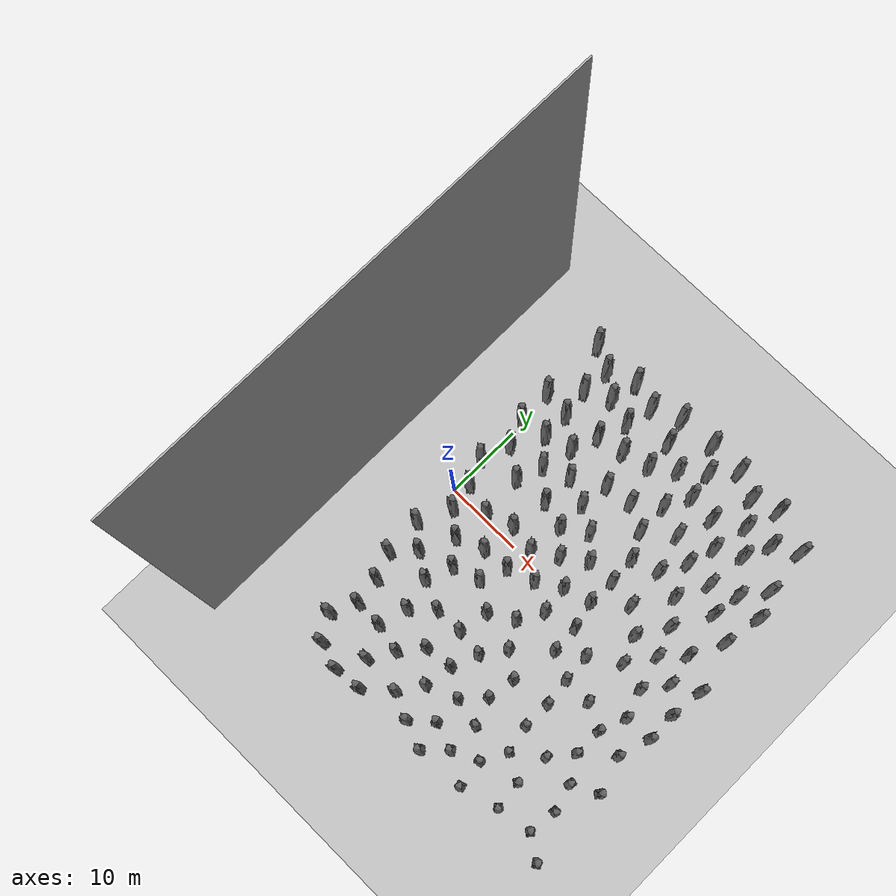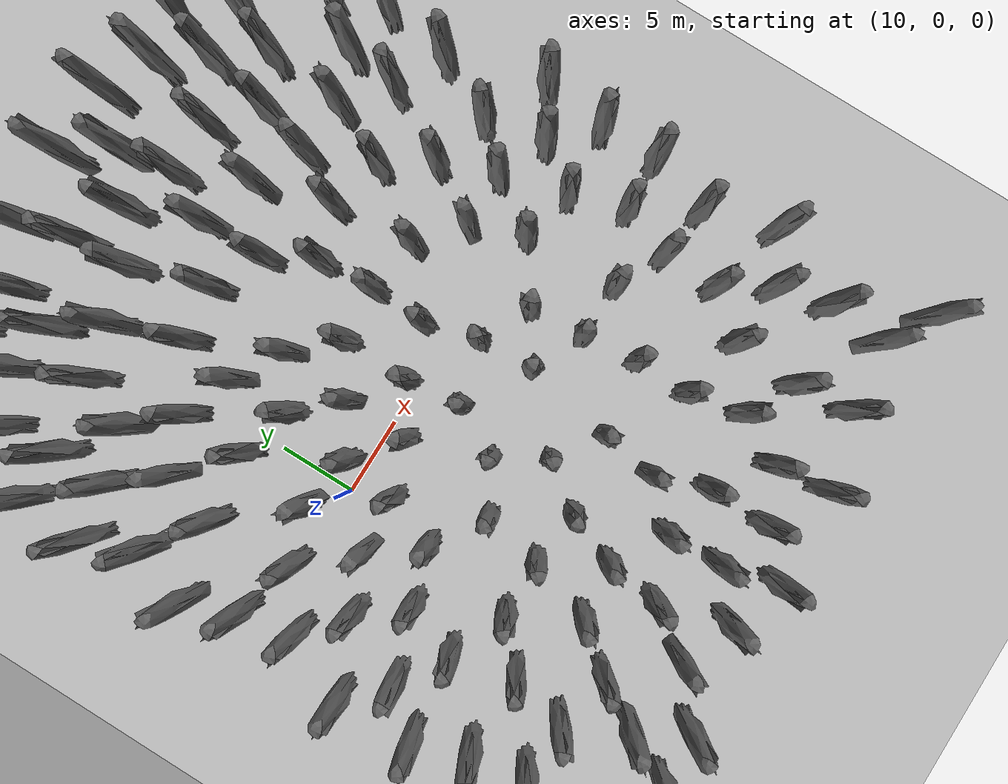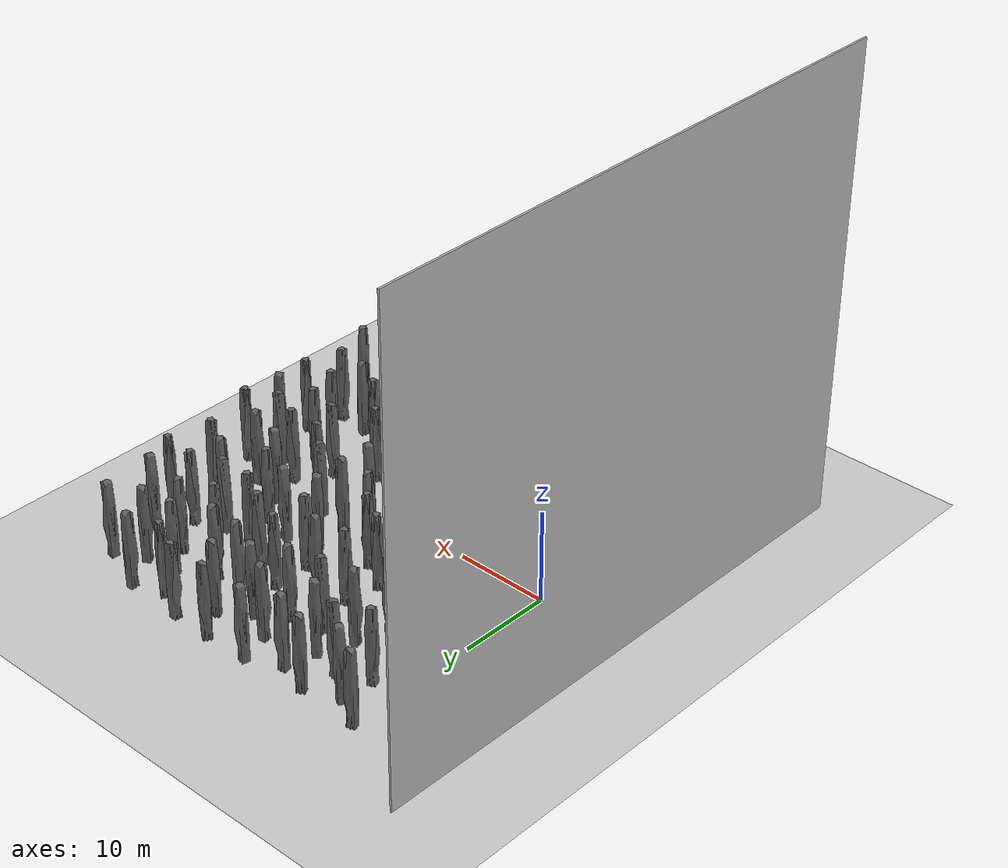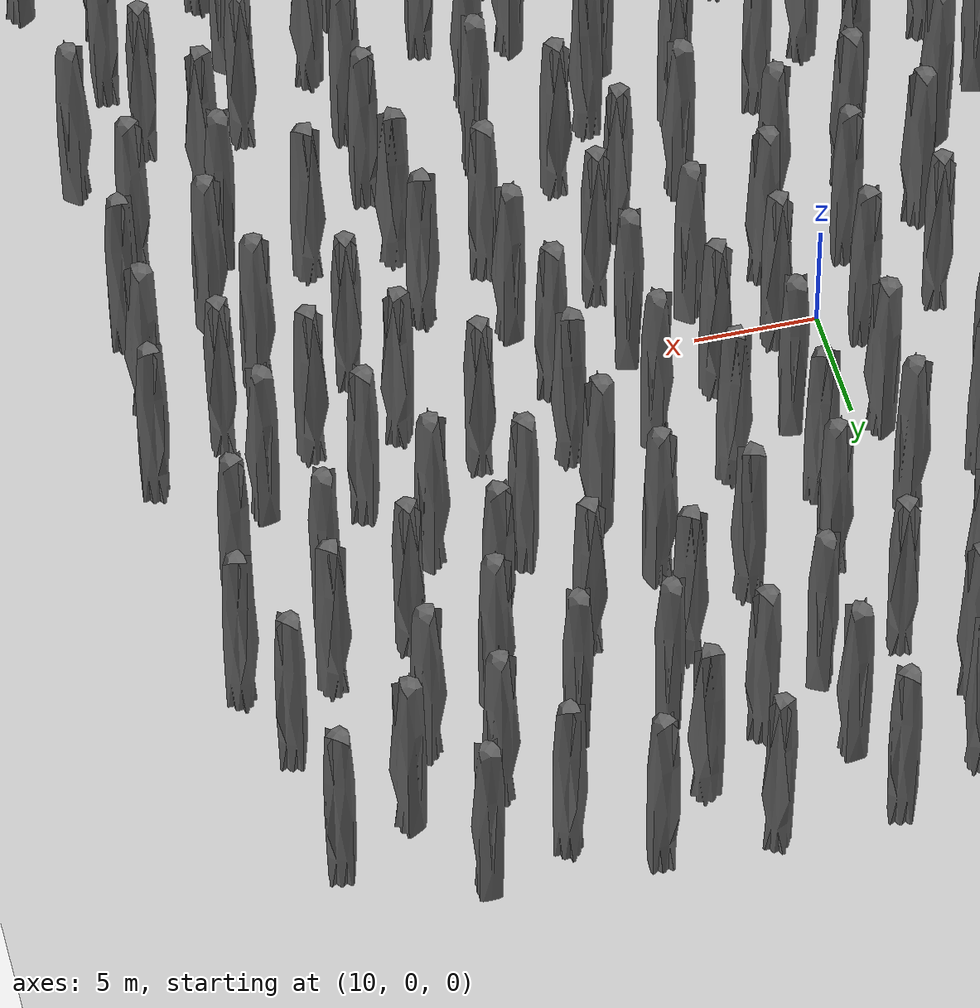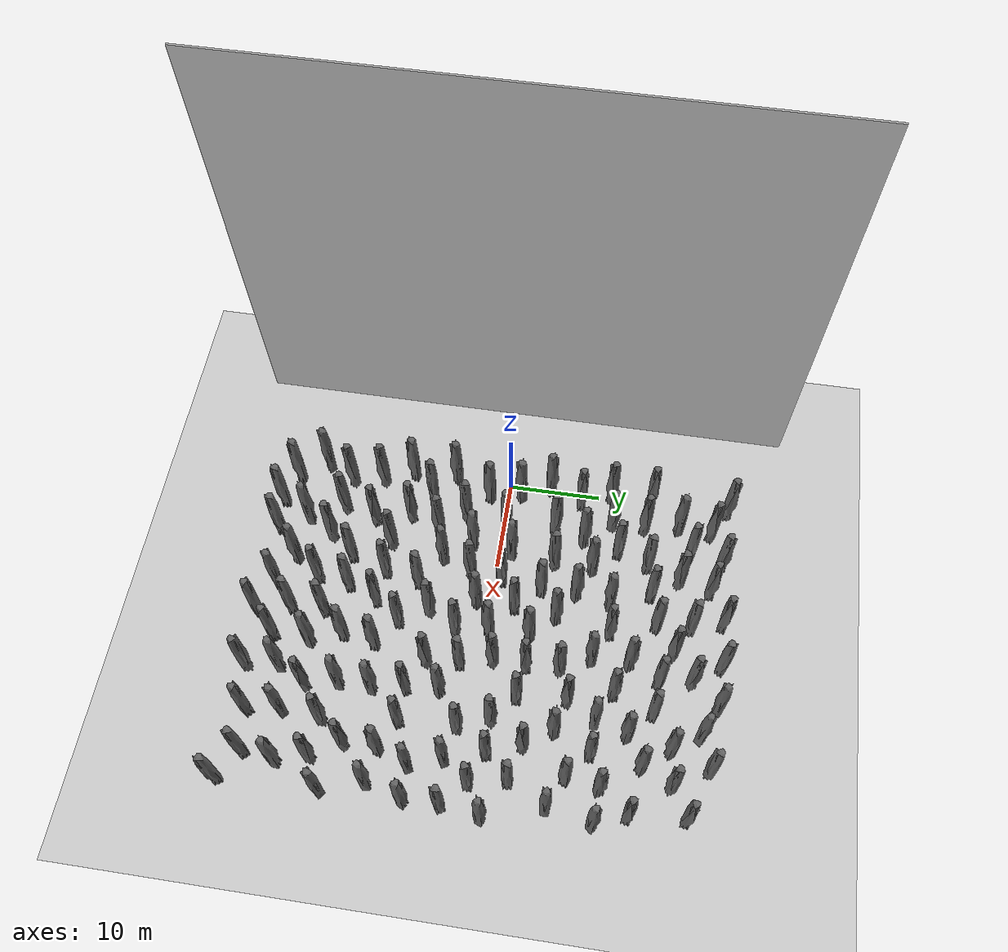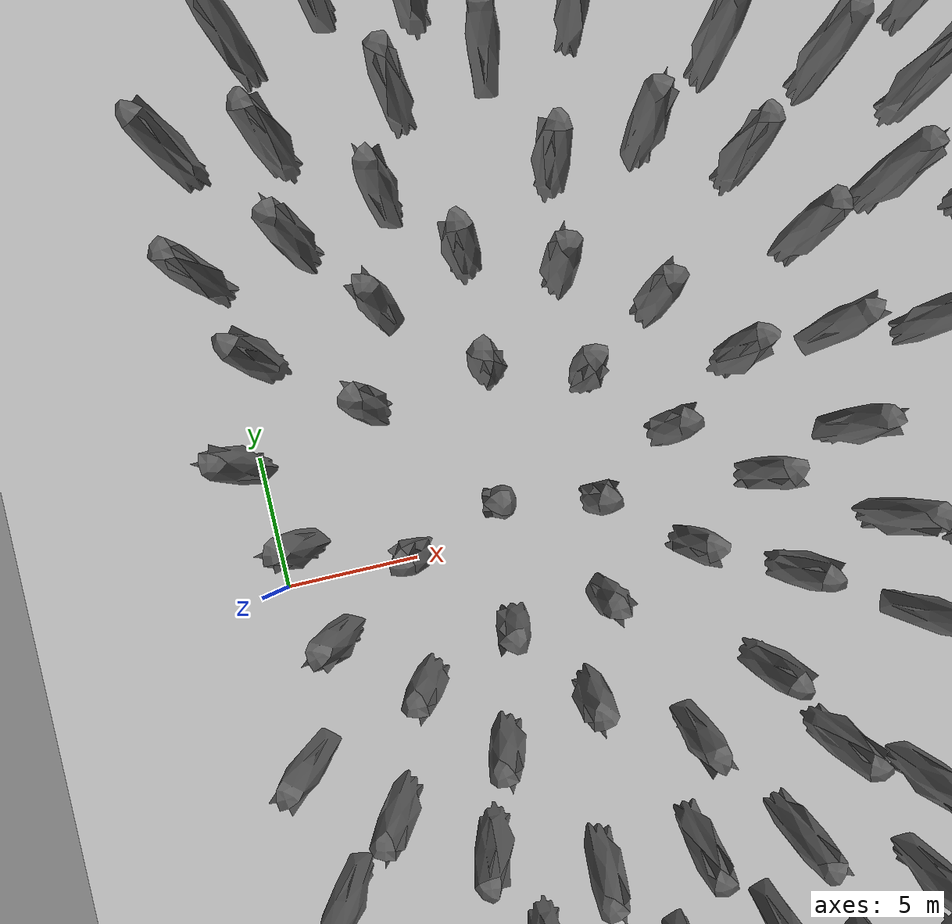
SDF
<sdf version="1.4">
 <world name="default">
  <model name="ground_plane">
   <static>1</static>
   <link name="link">
    <collision name="collision">
     <geometry><plane><normal>0 0 1</normal><size>1000 1000</size></plane></geometry>
     <surface>
      <contact><collide_bitmask>65535</collide_bitmask></contact>
      <friction><ode><mu>100</mu><mu2>50</mu2></ode></friction>
     </surface>
    </collision>
    <visual name="visual">
     <cast_shadows>0</cast_shadows>
     <geometry><plane><normal>0 0 1</normal><size>1000 1000</size></plane></geometry>
    </visual>
   </link>
  </model>
  <model name="wall_back">
   <static>1</static>
   <link name="link">
    <pose>0 0 25.0 0 0 0</pose>
    <collision name="collision"><geometry><box><size>60.0 0.2 50.0</size></box></geometry></collision>
    <visual name="visual">
     <cast_shadows>0</cast_shadows>
     <geometry><box><size>60.0 0.2 50.0</size></box></geometry>
    </visual>
   </link>
   <pose>-10.0 0.0 0 0 0 1.57</pose>
  </model>
  <include><uri>model://sun</uri></include>
  <include>
   <name>columnSimple Stone0</name>
   <uri>model://Simple Stone</uri>
   <pose>0.5974656343460083 -20.788248538970947 0 0 0 2.2808878329</pose>
   <static>true</static>
  </include>
  <include>
   <name>columnSimple Stone1</name>
   <uri>model://Simple Stone</uri>
   <pose>2.1889944076538086 -17.66710329055786 0 0 0 4.36591837706</pose>
   <static>true</static>
  </include>
  <include>
   <name>columnSimple Stone2</name>
   <uri>model://Simple Stone</uri>
   <pose>1.6663731336593628 -14.202802658081055 0 0 0 4.26047711827</pose>
   <static>true</static>
  </include>
  <include>
   <name>columnSimple Stone3</name>
   <uri>model://Simple Stone</uri>
   <pose>0.36102911829948425 -10.951558113098145 0 0 0 2.92902434949</pose>
   <static>true</static>
  </include>
  <include>
   <name>columnSimple Stone4</name>
   <uri>model://Simple Stone</uri>
   <pose>0.07796301692724228 -6.128801345825195 0 0 0 2.44515709588</pose>
   <static>true</static>
  </include>
  <include>
   <name>columnSimple Stone5</name>
   <uri>model://Simple Stone</uri>
   <pose>1.987779140472412 -2.061441421508789 0 0 0 2.69174266487</pose>
   <static>true</static>
  </include>
  <include>
   <name>columnSimple Stone6</name>
   <uri>model://Simple Stone</uri>
   <pose>1.3331774473190308 1.380361557006836 0 0 0 2.25149584862</pose>
   <static>true</static>
  </include>
  <include>
   <name>columnSimple Stone7</name>
   <uri>model://Simple Stone</uri>
   <pose>0.023226283490657806 4.629753112792969 0 0 0 0.591052861288</pose>
   <static>true</static>
  </include>
  <include>
   <name>columnSimple Stone8</name>
   <uri>model://Simple Stone</uri>
   <pose>1.3981932401657104 8.169815063476562 0 0 0 4.95443639723</pose>
   <static>true</static>
  </include>
  <include>
   <name>columnSimple Stone9</name>
   <uri>model://Simple Stone</uri>
   <pose>0.07677802443504333 11.414562225341797 0 0 0 4.04346523867</pose>
   <static>true</static>
  </include>
  <include>
   <name>columnSimple Stone10</name>
   <uri>model://Simple Stone</uri>
   <pose>0.028554420918226242 15.898670196533203 0 0 0 4.80223534727</pose>
   <static>true</static>
  </include>
  <include>
   <name>columnSimple Stone11</name>
   <uri>model://Simple Stone</uri>
   <pose>0.16850845515727997 24.454246520996094 0 0 0 5.00529077924</pose>
   <static>true</static>
  </include>
  <include>
   <name>columnSimple Stone12</name>
   <uri>model://Simple Stone</uri>
   <pose>2.4756360054016113 -23.745779395103455 0 0 0 3.19246371765</pose>
   <static>true</static>
  </include>
  <include>
   <name>columnSimple Stone13</name>
   <uri>model://Simple Stone</uri>
   <pose>2.7527992725372314 -8.391490936279297 0 0 0 3.69929834608</pose>
   <static>true</static>
  </include>
  <include>
   <name>columnSimple Stone14</name>
   <uri>model://Simple Stone</uri>
   <pose>4.710907459259033 -4.265773773193359 0 0 0 3.88790880826</pose>
   <static>true</static>
  </include>
  <include>
   <name>columnSimple Stone15</name>
   <uri>model://Simple Stone</uri>
   <pose>4.829306125640869 5.7141876220703125 0 0 0 5.91421720241</pose>
   <static>true</static>
  </include>
  <include>
   <name>columnSimple Stone16</name>
   <uri>model://Simple Stone</uri>
   <pose>3.538609266281128 11.953296661376953 0 0 0 5.68491237334</pose>
   <static>true</static>
  </include>
  <include>
   <name>columnSimple Stone17</name>
   <uri>model://Simple Stone</uri>
   <pose>3.504055976867676 15.456626892089844 0 0 0 4.17938135459</pose>
   <static>true</static>
  </include>
  <include>
   <name>columnSimple Stone18</name>
   <uri>model://Simple Stone</uri>
   <pose>2.9208505153656006 19.18494415283203 0 0 0 1.97820875184</pose>
   <static>true</static>
  </include>
  <include>
   <name>columnSimple Stone19</name>
   <uri>model://Simple Stone</uri>
   <pose>3.25226092338562 22.791423797607422 0 0 0 4.20374929425</pose>
   <static>true</static>
  </include>
  <include>
   <name>columnSimple Stone20</name>
   <uri>model://Simple Stone</uri>
   <pose>5.819989204406738 -24.789720833301544 0 0 0 3.32657137914</pose>
   <static>true</static>
  </include>
  <include>
   <name>columnSimple Stone21</name>
   <uri>model://Simple Stone</uri>
   <pose>5.690922737121582 -17.772029399871826 0 0 0 4.04454354951</pose>
   <static>true</static>
  </include>
  <include>
   <name>columnSimple Stone22</name>
   <uri>model://Simple Stone</uri>
   <pose>6.728269100189209 -14.14694595336914 0 0 0 5.36604107298</pose>
   <static>true</static>
  </include>
  <include>
   <name>columnSimple Stone23</name>
   <uri>model://Simple Stone</uri>
   <pose>5.714141845703125 -10.26364517211914 0 0 0 5.39051105403</pose>
   <static>true</static>
  </include>
  <include>
   <name>columnSimple Stone24</name>
   <uri>model://Simple Stone</uri>
   <pose>6.929159164428711 -6.977577209472656 0 0 0 4.11545846296</pose>
   <static>true</static>
  </include>
  <include>
   <name>columnSimple Stone25</name>
   <uri>model://Simple Stone</uri>
   <pose>5.236477375030518 0.2721672058105469 0 0 0 6.13725018253</pose>
   <static>true</static>
  </include>
  <include>
   <name>columnSimple Stone26</name>
   <uri>model://Simple Stone</uri>
   <pose>5.933820724487305 9.03902816772461 0 0 0 0.624710933201</pose>
   <static>true</static>
  </include>
  <include>
   <name>columnSimple Stone27</name>
   <uri>model://Simple Stone</uri>
   <pose>6.91015100479126 12.905776977539062 0 0 0 6.05028263064</pose>
   <static>true</static>
  </include>
  <include>
   <name>columnSimple Stone28</name>
   <uri>model://Simple Stone</uri>
   <pose>6.073202133178711 20.713729858398438 0 0 0 6.07125703626</pose>
   <static>true</static>
  </include>
  <include>
   <name>columnSimple Stone29</name>
   <uri>model://Simple Stone</uri>
   <pose>6.834170341491699 24.195701599121094 0 0 0 5.23080507346</pose>
   <static>true</static>
  </include>
  <include>
   <name>columnSimple Stone30</name>
   <uri>model://Simple Stone</uri>
   <pose>9.31649398803711 -24.456710278987885 0 0 0 3.58600706696</pose>
   <static>true</static>
  </include>
  <include>
   <name>columnSimple Stone31</name>
   <uri>model://Simple Stone</uri>
   <pose>7.478354454040527 -21.474135398864746 0 0 0 1.63510037327</pose>
   <static>true</static>
  </include>
  <include>
   <name>columnSimple Stone32</name>
   <uri>model://Simple Stone</uri>
   <pose>9.323796272277832 -18.49607276916504 0 0 0 5.79026404853</pose>
   <static>true</static>
  </include>
  <include>
   <name>columnSimple Stone33</name>
   <uri>model://Simple Stone</uri>
   <pose>9.349472999572754 -11.822338104248047 0 0 0 4.38090643453</pose>
   <static>true</static>
  </include>
  <include>
   <name>columnSimple Stone34</name>
   <uri>model://Simple Stone</uri>
   <pose>8.066061973571777 -2.9246482849121094 0 0 0 1.45038019653</pose>
   <static>true</static>
  </include>
  <include>
   <name>columnSimple Stone35</name>
   <uri>model://Simple Stone</uri>
   <pose>8.54831600189209 1.4150714874267578 0 0 0 1.42191882449</pose>
   <static>true</static>
  </include>
  <include>
   <name>columnSimple Stone36</name>
   <uri>model://Simple Stone</uri>
   <pose>9.178267478942871 6.146221160888672 0 0 0 3.71433427833</pose>
   <static>true</static>
  </include>
  <include>
   <name>columnSimple Stone37</name>
   <uri>model://Simple Stone</uri>
   <pose>9.215001106262207 10.267181396484375 0 0 0 2.14840365314</pose>
   <static>true</static>
  </include>
  <include>
   <name>columnSimple Stone38</name>
   <uri>model://Simple Stone</uri>
   <pose>8.082594871520996 16.2041015625 0 0 0 3.42708128805</pose>
   <static>true</static>
  </include>
  <include>
   <name>columnSimple Stone39</name>
   <uri>model://Simple Stone</uri>
   <pose>9.446582794189453 19.767784118652344 0 0 0 3.820207842</pose>
   <static>true</static>
  </include>
  <include>
   <name>columnSimple Stone40</name>
   <uri>model://Simple Stone</uri>
   <pose>11.549213409423828 -15.79014778137207 0 0 0 3.48761249117</pose>
   <static>true</static>
  </include>
  <include>
   <name>columnSimple Stone41</name>
   <uri>model://Simple Stone</uri>
   <pose>10.27055549621582 -5.924211502075195 0 0 0 2.28109786822</pose>
   <static>true</static>
  </include>
  <include>
   <name>columnSimple Stone42</name>
   <uri>model://Simple Stone</uri>
   <pose>11.560049057006836 -2.666646957397461 0 0 0 3.94262436223</pose>
   <static>true</static>
  </include>
  <include>
   <name>columnSimple Stone43</name>
   <uri>model://Simple Stone</uri>
   <pose>11.999091148376465 0.809539794921875 0 0 0 0.0159170578544</pose>
   <static>true</static>
  </include>
  <include>
   <name>columnSimple Stone44</name>
   <uri>model://Simple Stone</uri>
   <pose>11.508885383605957 16.93557357788086 0 0 0 6.12472761481</pose>
   <static>true</static>
  </include>
  <include>
   <name>columnSimple Stone45</name>
   <uri>model://Simple Stone</uri>
   <pose>10.190629959106445 23.191364288330078 0 0 0 4.84031123165</pose>
   <static>true</static>
  </include>
  <include>
   <name>columnSimple Stone46</name>
   <uri>model://Simple Stone</uri>
   <pose>12.489601135253906 -21.797468185424805 0 0 0 2.80016148715</pose>
   <static>true</static>
  </include>
  <include>
   <name>columnSimple Stone47</name>
   <uri>model://Simple Stone</uri>
   <pose>14.507863998413086 -18.840089797973633 0 0 0 0.222869617291</pose>
   <static>true</static>
  </include>
  <include>
   <name>columnSimple Stone48</name>
   <uri>model://Simple Stone</uri>
   <pose>12.851445198059082 -11.718884468078613 0 0 0 0.0796052345554</pose>
   <static>true</static>
  </include>
  <include>
   <name>columnSimple Stone49</name>
   <uri>model://Simple Stone</uri>
   <pose>13.579473495483398 -8.03879165649414 0 0 0 3.27855536121</pose>
   <static>true</static>
  </include>
  <include>
   <name>columnSimple Stone50</name>
   <uri>model://Simple Stone</uri>
   <pose>12.54337215423584 5.171243667602539 0 0 0 2.92181600143</pose>
   <static>true</static>
  </include>
  <include>
   <name>columnSimple Stone51</name>
   <uri>model://Simple Stone</uri>
   <pose>12.467951774597168 8.96609878540039 0 0 0 0.706298909557</pose>
   <static>true</static>
  </include>
  <include>
   <name>columnSimple Stone52</name>
   <uri>model://Simple Stone</uri>
   <pose>12.970303535461426 12.612190246582031 0 0 0 1.87357589404</pose>
   <static>true</static>
  </include>
  <include>
   <name>columnSimple Stone53</name>
   <uri>model://Simple Stone</uri>
   <pose>14.648061752319336 21.389400482177734 0 0 0 3.27272458316</pose>
   <static>true</static>
  </include>
  <include>
   <name>columnSimple Stone54</name>
   <uri>model://Simple Stone</uri>
   <pose>13.754175186157227 24.776947021484375 0 0 0 4.50240112608</pose>
   <static>true</static>
  </include>
  <include>
   <name>columnSimple Stone55</name>
   <uri>model://Simple Stone</uri>
   <pose>15.704328536987305 -23.190320253372192 0 0 0 2.19353934147</pose>
   <static>true</static>
  </include>
  <include>
   <name>columnSimple Stone56</name>
   <uri>model://Simple Stone</uri>
   <pose>15.028080940246582 -15.37542724609375 0 0 0 3.44581031933</pose>
   <static>true</static>
  </include>
  <include>
   <name>columnSimple Stone57</name>
   <uri>model://Simple Stone</uri>
   <pose>16.331512451171875 -12.12341594696045 0 0 0 5.03497250912</pose>
   <static>true</static>
  </include>
  <include>
   <name>columnSimple Stone58</name>
   <uri>model://Simple Stone</uri>
   <pose>16.59453582763672 -6.2544403076171875 0 0 0 5.86842166284</pose>
   <static>true</static>
  </include>
  <include>
   <name>columnSimple Stone59</name>
   <uri>model://Simple Stone</uri>
   <pose>14.875446319580078 -1.5341053009033203 0 0 0 2.49258702858</pose>
   <static>true</static>
  </include>
  <include>
   <name>columnSimple Stone60</name>
   <uri>model://Simple Stone</uri>
   <pose>14.97866439819336 2.6525402069091797 0 0 0 0.167150648542</pose>
   <static>true</static>
  </include>
  <include>
   <name>columnSimple Stone61</name>
   <uri>model://Simple Stone</uri>
   <pose>15.478620529174805 7.174343109130859 0 0 0 0.579973972124</pose>
   <static>true</static>
  </include>
  <include>
   <name>columnSimple Stone62</name>
   <uri>model://Simple Stone</uri>
   <pose>16.448720932006836 13.030670166015625 0 0 0 4.94110632809</pose>
   <static>true</static>
  </include>
  <include>
   <name>columnSimple Stone63</name>
   <uri>model://Simple Stone</uri>
   <pose>14.90477180480957 17.797237396240234 0 0 0 2.66093039389</pose>
   <static>true</static>
  </include>
  <include>
   <name>columnSimple Stone64</name>
   <uri>model://Simple Stone</uri>
   <pose>19.179235458374023 -24.46696835756302 0 0 0 0.677385420917</pose>
   <static>true</static>
  </include>
  <include>
   <name>columnSimple Stone65</name>
   <uri>model://Simple Stone</uri>
   <pose>18.398645401000977 -20.950863361358643 0 0 0 3.5961721317</pose>
   <static>true</static>
  </include>
  <include>
   <name>columnSimple Stone66</name>
   <uri>model://Simple Stone</uri>
   <pose>18.272768020629883 -17.395309925079346 0 0 0 3.77605302296</pose>
   <static>true</static>
  </include>
  <include>
   <name>columnSimple Stone67</name>
   <uri>model://Simple Stone</uri>
   <pose>18.370559692382812 -9.274415969848633 0 0 0 0.131447421542</pose>
   <static>true</static>
  </include>
  <include>
   <name>columnSimple Stone68</name>
   <uri>model://Simple Stone</uri>
   <pose>18.277841567993164 -3.1818199157714844 0 0 0 6.18850793997</pose>
   <static>true</static>
  </include>
  <include>
   <name>columnSimple Stone69</name>
   <uri>model://Simple Stone</uri>
   <pose>17.86237144470215 0.29695701599121094 0 0 0 2.90114259705</pose>
   <static>true</static>
  </include>
  <include>
   <name>columnSimple Stone70</name>
   <uri>model://Simple Stone</uri>
   <pose>17.877151489257812 4.620607376098633 0 0 0 2.53701319996</pose>
   <static>true</static>
  </include>
  <include>
   <name>columnSimple Stone71</name>
   <uri>model://Simple Stone</uri>
   <pose>19.540969848632812 11.383705139160156 0 0 0 1.90836260034</pose>
   <static>true</static>
  </include>
  <include>
   <name>columnSimple Stone72</name>
   <uri>model://Simple Stone</uri>
   <pose>19.465864181518555 15.448631286621094 0 0 0 0.517410082392</pose>
   <static>true</static>
  </include>
  <include>
   <name>columnSimple Stone73</name>
   <uri>model://Simple Stone</uri>
   <pose>17.77412223815918 19.80754852294922 0 0 0 4.10200735096</pose>
   <static>true</static>
  </include>
  <include>
   <name>columnSimple Stone74</name>
   <uri>model://Simple Stone</uri>
   <pose>18.566417694091797 24.935367584228516 0 0 0 5.74033726821</pose>
   <static>true</static>
  </include>
  <include>
   <name>columnSimple Stone75</name>
   <uri>model://Simple Stone</uri>
   <pose>21.722745895385742 -22.057599544525146 0 0 0 0.611022791517</pose>
   <static>true</static>
  </include>
  <include>
   <name>columnSimple Stone76</name>
   <uri>model://Simple Stone</uri>
   <pose>21.78949737548828 -18.134785175323486 0 0 0 1.27591298633</pose>
   <static>true</static>
  </include>
  <include>
   <name>columnSimple Stone77</name>
   <uri>model://Simple Stone</uri>
   <pose>20.650028228759766 -14.821762084960938 0 0 0 3.17982037455</pose>
   <static>true</static>
  </include>
  <include>
   <name>columnSimple Stone78</name>
   <uri>model://Simple Stone</uri>
   <pose>21.18603515625 -11.35950756072998 0 0 0 3.0913483542</pose>
   <static>true</static>
  </include>
  <include>
   <name>columnSimple Stone79</name>
   <uri>model://Simple Stone</uri>
   <pose>22.265825271606445 -5.633747100830078 0 0 0 4.39742433208</pose>
   <static>true</static>
  </include>
  <include>
   <name>columnSimple Stone80</name>
   <uri>model://Simple Stone</uri>
   <pose>22.050376892089844 -2.1368789672851562 0 0 0 3.37828306501</pose>
   <static>true</static>
  </include>
  <include>
   <name>columnSimple Stone81</name>
   <uri>model://Simple Stone</uri>
   <pose>21.228376388549805 1.2688274383544922 0 0 0 4.23545060046</pose>
   <static>true</static>
  </include>
  <include>
   <name>columnSimple Stone82</name>
   <uri>model://Simple Stone</uri>
   <pose>21.377500534057617 4.76915168762207 0 0 0 5.0370462682</pose>
   <static>true</static>
  </include>
  <include>
   <name>columnSimple Stone83</name>
   <uri>model://Simple Stone</uri>
   <pose>21.13593292236328 8.264312744140625 0 0 0 3.88355070643</pose>
   <static>true</static>
  </include>
  <include>
   <name>columnSimple Stone84</name>
   <uri>model://Simple Stone</uri>
   <pose>21.0526065826416 18.57221221923828 0 0 0 2.75189748803</pose>
   <static>true</static>
  </include>
  <include>
   <name>columnSimple Stone85</name>
   <uri>model://Simple Stone</uri>
   <pose>20.535062789916992 22.037273406982422 0 0 0 5.25582995461</pose>
   <static>true</static>
  </include>
  <include>
   <name>columnSimple Stone86</name>
   <uri>model://Simple Stone</uri>
   <pose>24.42357063293457 9.475078582763672 0 0 0 4.35890981034</pose>
   <static>true</static>
  </include>
  <include>
   <name>columnSimple Stone87</name>
   <uri>model://Simple Stone</uri>
   <pose>23.01923179626465 14.118099212646484 0 0 0 0.212420828692</pose>
   <static>true</static>
  </include>
  <include>
   <name>columnSimple Stone88</name>
   <uri>model://Simple Stone</uri>
   <pose>24.543996810913086 18.281173706054688 0 0 0 2.9400547375</pose>
   <static>true</static>
  </include>
  <include>
   <name>columnSimple Stone89</name>
   <uri>model://Simple Stone</uri>
   <pose>22.975290298461914 24.79775619506836 0 0 0 1.52987779045</pose>
   <static>true</static>
  </include>
  <include>
   <name>columnSimple Stone90</name>
   <uri>model://Simple Stone</uri>
   <pose>25.348316192626953 -24.08875221014023 0 0 0 0.283654675189</pose>
   <static>true</static>
  </include>
  <include>
   <name>columnSimple Stone91</name>
   <uri>model://Simple Stone</uri>
   <pose>24.914215087890625 -20.612249851226807 0 0 0 1.75719322971</pose>
   <static>true</static>
  </include>
  <include>
   <name>columnSimple Stone92</name>
   <uri>model://Simple Stone</uri>
   <pose>26.608095169067383 -17.545446395874023 0 0 0 5.55580152874</pose>
   <static>true</static>
  </include>
  <include>
   <name>columnSimple Stone93</name>
   <uri>model://Simple Stone</uri>
   <pose>25.854677200317383 -14.123915672302246 0 0 0 1.62860219553</pose>
   <static>true</static>
  </include>
  <include>
   <name>columnSimple Stone94</name>
   <uri>model://Simple Stone</uri>
   <pose>25.907024383544922 -10.620806694030762 0 0 0 1.47275047892</pose>
   <static>true</static>
  </include>
  <include>
   <name>columnSimple Stone95</name>
   <uri>model://Simple Stone</uri>
   <pose>25.520854949951172 -7.138654708862305 0 0 0 5.21187243569</pose>
   <static>true</static>
  </include>
  <include>
   <name>columnSimple Stone96</name>
   <uri>model://Simple Stone</uri>
   <pose>25.210803985595703 -3.6489009857177734 0 0 0 0.88145587266</pose>
   <static>true</static>
  </include>
  <include>
   <name>columnSimple Stone97</name>
   <uri>model://Simple Stone</uri>
   <pose>24.852575302124023 4.323757171630859 0 0 0 6.27797875871</pose>
   <static>true</static>
  </include>
  <include>
   <name>columnSimple Stone98</name>
   <uri>model://Simple Stone</uri>
   <pose>26.141382217407227 12.528541564941406 0 0 0 1.55407160222</pose>
   <static>true</static>
  </include>
  <include>
   <name>columnSimple Stone99</name>
   <uri>model://Simple Stone</uri>
   <pose>27.10978889465332 15.895545959472656 0 0 0 2.11029398542</pose>
   <static>true</static>
  </include>
  <include>
   <name>columnSimple Stone100</name>
   <uri>model://Simple Stone</uri>
   <pose>26.175006866455078 23.37075424194336 0 0 0 0.919110244455</pose>
   <static>true</static>
  </include>
  <include>
   <name>columnSimple Stone101</name>
   <uri>model://Simple Stone</uri>
   <pose>29.633939743041992 -19.31145191192627 0 0 0 2.47755495753</pose>
   <static>true</static>
  </include>
  <include>
   <name>columnSimple Stone102</name>
   <uri>model://Simple Stone</uri>
   <pose>29.024005889892578 -7.188014984130859 0 0 0 0.473182808948</pose>
   <static>true</static>
  </include>
  <include>
   <name>columnSimple Stone103</name>
   <uri>model://Simple Stone</uri>
   <pose>28.81216812133789 -1.1816730499267578 0 0 0 6.12183515142</pose>
   <static>true</static>
  </include>
  <include>
   <name>columnSimple Stone104</name>
   <uri>model://Simple Stone</uri>
   <pose>27.54820442199707 2.0858802795410156 0 0 0 5.71498416654</pose>
   <static>true</static>
  </include>
  <include>
   <name>columnSimple Stone105</name>
   <uri>model://Simple Stone</uri>
   <pose>27.800935745239258 8.543460845947266 0 0 0 2.27155135697</pose>
   <static>true</static>
  </include>
  <include>
   <name>columnSimple Stone106</name>
   <uri>model://Simple Stone</uri>
   <pose>29.644433975219727 12.472457885742188 0 0 0 6.27223683295</pose>
   <static>true</static>
  </include>
  <include>
   <name>columnSimple Stone107</name>
   <uri>model://Simple Stone</uri>
   <pose>28.0534725189209 20.413410186767578 0 0 0 2.19804981927</pose>
   <static>true</static>
  </include>
  <include>
   <name>columnSimple Stone108</name>
   <uri>model://Simple Stone</uri>
   <pose>29.509767532348633 24.44493865966797 0 0 0 3.15062638195</pose>
   <static>true</static>
  </include>
  <include>
   <name>columnSimple Stone109</name>
   <uri>model://Simple Stone</uri>
   <pose>30.03154754638672 -22.792316913604736 0 0 0 0.837819035001</pose>
   <static>true</static>
  </include>
  <include>
   <name>columnSimple Stone110</name>
   <uri>model://Simple Stone</uri>
   <pose>29.946779251098633 -15.006893157958984 0 0 0 0.0181833057439</pose>
   <static>true</static>
  </include>
  <include>
   <name>columnSimple Stone111</name>
   <uri>model://Simple Stone</uri>
   <pose>32.121665954589844 -12.260189056396484 0 0 0 5.66818912547</pose>
   <static>true</static>
  </include>
  <include>
   <name>columnSimple Stone112</name>
   <uri>model://Simple Stone</uri>
   <pose>32.156612396240234 -8.75686264038086 0 0 0 2.91461873294</pose>
   <static>true</static>
  </include>
  <include>
   <name>columnSimple Stone113</name>
   <uri>model://Simple Stone</uri>
   <pose>31.050973892211914 2.157411575317383 0 0 0 0.248439356285</pose>
   <static>true</static>
  </include>
  <include>
   <name>columnSimple Stone114</name>
   <uri>model://Simple Stone</uri>
   <pose>29.786752700805664 5.6571044921875 0 0 0 4.31170567066</pose>
   <static>true</static>
  </include>
  <include>
   <name>columnSimple Stone115</name>
   <uri>model://Simple Stone</uri>
   <pose>30.16205406188965 17.615482330322266 0 0 0 2.33711561302</pose>
   <static>true</static>
  </include>
  <include>
   <name>columnSimple Stone116</name>
   <uri>model://Simple Stone</uri>
   <pose>31.632030487060547 20.795684814453125 0 0 0 3.64440514118</pose>
   <static>true</static>
  </include>
  <include>
   <name>columnSimple Stone117</name>
   <uri>model://Simple Stone</uri>
   <pose>34.37894821166992 -22.14194130897522 0 0 0 4.00205128022</pose>
   <static>true</static>
  </include>
  <include>
   <name>columnSimple Stone118</name>
   <uri>model://Simple Stone</uri>
   <pose>33.91474914550781 -15.270066261291504 0 0 0 6.08978565365</pose>
   <static>true</static>
  </include>
  <include>
   <name>columnSimple Stone119</name>
   <uri>model://Simple Stone</uri>
   <pose>33.370548248291016 -5.470394134521484 0 0 0 2.07175139843</pose>
   <static>true</static>
  </include>
  <include>
   <name>columnSimple Stone120</name>
   <uri>model://Simple Stone</uri>
   <pose>32.238834381103516 -1.9835357666015625 0 0 0 2.08173592961</pose>
   <static>true</static>
  </include>
  <include>
   <name>columnSimple Stone121</name>
   <uri>model://Simple Stone</uri>
   <pose>34.30091857910156 0.8488349914550781 0 0 0 6.22532129539</pose>
   <static>true</static>
  </include>
  <include>
   <name>columnSimple Stone122</name>
   <uri>model://Simple Stone</uri>
   <pose>33.50166320800781 4.6611328125 0 0 0 3.32467564575</pose>
   <static>true</static>
  </include>
  <include>
   <name>columnSimple Stone123</name>
   <uri>model://Simple Stone</uri>
   <pose>32.3602409362793 10.259109497070312 0 0 0 2.7924832918</pose>
   <static>true</static>
  </include>
  <include>
   <name>columnSimple Stone124</name>
   <uri>model://Simple Stone</uri>
   <pose>32.90289306640625 13.759689331054688 0 0 0 0.426843513819</pose>
   <static>true</static>
  </include>
  <include>
   <name>columnSimple Stone125</name>
   <uri>model://Simple Stone</uri>
   <pose>34.78956985473633 -18.662587642669678 0 0 0 1.49179692309</pose>
   <static>true</static>
  </include>
  <include>
   <name>columnSimple Stone126</name>
   <uri>model://Simple Stone</uri>
   <pose>37.05760192871094 -13.721837997436523 0 0 0 2.46597111274</pose>
   <static>true</static>
  </include>
  <include>
   <name>columnSimple Stone127</name>
   <uri>model://Simple Stone</uri>
   <pose>35.63166809082031 -9.202414512634277 0 0 0 1.76058682969</pose>
   <static>true</static>
  </include>
  <include>
   <name>columnSimple Stone128</name>
   <uri>model://Simple Stone</uri>
   <pose>36.868316650390625 -5.270090103149414 0 0 0 1.08935247906</pose>
   <static>true</static>
  </include>
  <include>
   <name>columnSimple Stone129</name>
   <uri>model://Simple Stone</uri>
   <pose>36.83201599121094 -1.5735740661621094 0 0 0 3.70309374049</pose>
   <static>true</static>
  </include>
  <include>
   <name>columnSimple Stone130</name>
   <uri>model://Simple Stone</uri>
   <pose>35.51814651489258 8.741832733154297 0 0 0 1.53416055337</pose>
   <static>true</static>
  </include>
  <include>
   <name>columnSimple Stone131</name>
   <uri>model://Simple Stone</uri>
   <pose>36.395320892333984 13.481361389160156 0 0 0 0.886964527142</pose>
   <static>true</static>
  </include>
  <include>
   <name>columnSimple Stone132</name>
   <uri>model://Simple Stone</uri>
   <pose>35.204612731933594 16.77631378173828 0 0 0 4.46680161234</pose>
   <static>true</static>
  </include>
  <include>
   <name>columnSimple Stone133</name>
   <uri>model://Simple Stone</uri>
   <pose>34.678707122802734 22.525501251220703 0 0 0 4.57778069517</pose>
   <static>true</static>
  </include>
  <include>
   <name>columnSimple Stone134</name>
   <uri>model://Simple Stone</uri>
   <pose>37.305633544921875 -24.067825496196747 0 0 0 3.73265268705</pose>
   <static>true</static>
  </include>
  <include>
   <name>columnSimple Stone138</name>
   <uri>model://Simple Stone</uri>
   <pose>37.34553527832031 2.582277297973633 0 0 0 1.17538892809</pose>
   <static>true</static>
  </include>
 </world>
</sdf>
